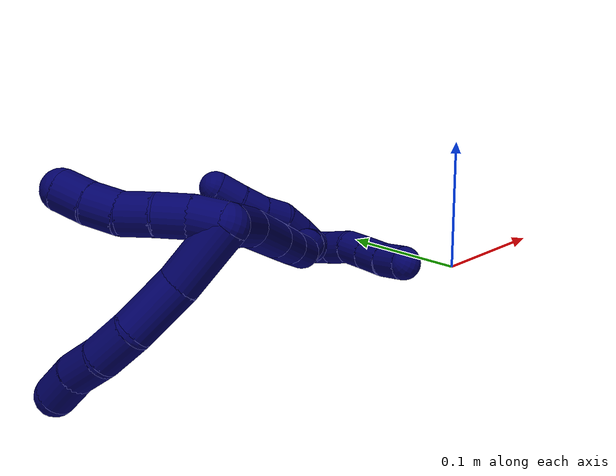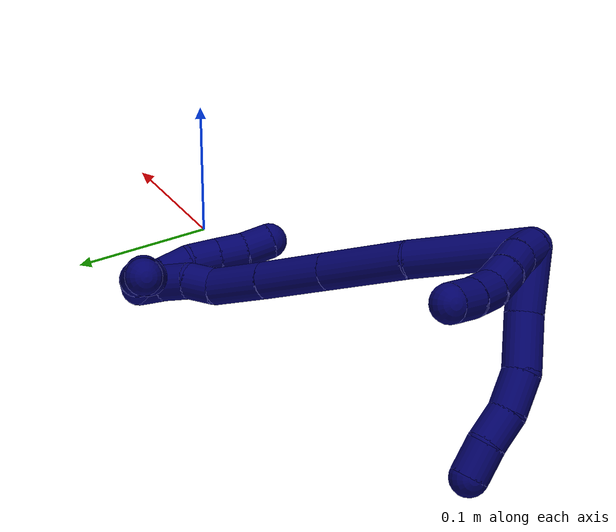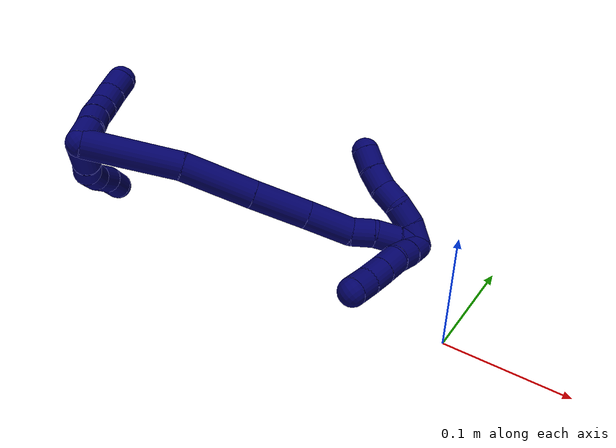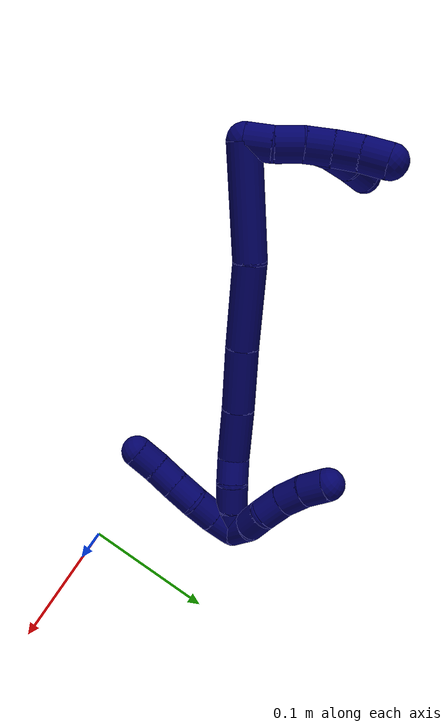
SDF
<sdf version="1.7">
 <world name="default">
  <model name="7">
   <static>0</static>
   <link name="7">
    <collision name="collision-cylinder-e_1_2_8">
     <pose>-0.018058 0.010568 0.002276 -1.35866 -1.03137 0.858573</pose>
     <geometry><cylinder><radius>0.0125</radius><length>0.042093</length></cylinder></geometry>
     <surface>
      <friction><ode><mu>1.16</mu><mu2>1.16</mu2><slip1>0</slip1><slip2>0</slip2></ode></friction>
      <contact><ode><kp>1e+06</kp><kd>1</kd><max_vel>0</max_vel><min_depth>0.001</min_depth></ode></contact>
     </surface>
    </collision>
    <visual name="visual-cylinder-e_1_2_8">
     <pose>-0.018058 0.010568 0.002276 -1.35866 -1.03137 0.858573</pose>
     <geometry><cylinder><radius>0.0125</radius><length>0.042093</length></cylinder></geometry>
     <material><ambient>0.003922 0 0.403922 1</ambient></material>
    </visual>
    <collision name="collision-cylinder-e_2_8_9">
     <pose>-0.051462 0.029594 0.008954 -1.09098 -1.01486 0.650882</pose>
     <geometry><cylinder><radius>0.0125</radius><length>0.036135</length></cylinder></geometry>
     <surface>
      <friction><ode><mu>1.16</mu><mu2>1.16</mu2><slip1>0</slip1><slip2>0</slip2></ode></friction>
      <contact><ode><kp>1e+06</kp><kd>1</kd><max_vel>0</max_vel><min_depth>0.001</min_depth></ode></contact>
     </surface>
    </collision>
    <visual name="visual-cylinder-e_2_8_9">
     <pose>-0.051462 0.029594 0.008954 -1.09098 -1.01486 0.650882</pose>
     <geometry><cylinder><radius>0.0125</radius><length>0.036135</length></cylinder></geometry>
     <material><ambient>0.003922 0 0.403922 1</ambient></material>
    </visual>
    <collision name="collision-cylinder-e_3_9_10">
     <pose>-0.076008 0.047136 0.014922 -1.39998 -0.784361 0.670444</pose>
     <geometry><cylinder><radius>0.0125</radius><length>0.026045</length></cylinder></geometry>
     <surface>
      <friction><ode><mu>1.16</mu><mu2>1.16</mu2><slip1>0</slip1><slip2>0</slip2></ode></friction>
      <contact><ode><kp>1e+06</kp><kd>1</kd><max_vel>0</max_vel><min_depth>0.001</min_depth></ode></contact>
     </surface>
    </collision>
    <visual name="visual-cylinder-e_3_9_10">
     <pose>-0.076008 0.047136 0.014922 -1.39998 -0.784361 0.670444</pose>
     <geometry><cylinder><radius>0.0125</radius><length>0.026045</length></cylinder></geometry>
     <material><ambient>0.003922 0 0.403922 1</ambient></material>
    </visual>
    <collision name="collision-cylinder-e_4_10_11">
     <pose>-0.091339 0.065885 0.017183 -1.4991 -0.564225 0.526999</pose>
     <geometry><cylinder><radius>0.0125</radius><length>0.022935</length></cylinder></geometry>
     <surface>
      <friction><ode><mu>1.16</mu><mu2>1.16</mu2><slip1>0</slip1><slip2>0</slip2></ode></friction>
      <contact><ode><kp>1e+06</kp><kd>1</kd><max_vel>0</max_vel><min_depth>0.001</min_depth></ode></contact>
     </surface>
    </collision>
    <visual name="visual-cylinder-e_4_10_11">
     <pose>-0.091339 0.065885 0.017183 -1.4991 -0.564225 0.526999</pose>
     <geometry><cylinder><radius>0.0125</radius><length>0.022935</length></cylinder></geometry>
     <material><ambient>0.003922 0 0.403922 1</ambient></material>
    </visual>
    <collision name="collision-cylinder-e_5_11_6">
     <pose>-0.104973 0.084108 0.017275 -1.64104 -0.718543 0.766047</pose>
     <geometry><cylinder><radius>0.0125</radius><length>0.022792</length></cylinder></geometry>
     <surface>
      <friction><ode><mu>1.16</mu><mu2>1.16</mu2><slip1>0</slip1><slip2>0</slip2></ode></friction>
      <contact><ode><kp>1e+06</kp><kd>1</kd><max_vel>0</max_vel><min_depth>0.001</min_depth></ode></contact>
     </surface>
    </collision>
    <visual name="visual-cylinder-e_5_11_6">
     <pose>-0.104973 0.084108 0.017275 -1.64104 -0.718543 0.766047</pose>
     <geometry><cylinder><radius>0.0125</radius><length>0.022792</length></cylinder></geometry>
     <material><ambient>0.003922 0 0.403922 1</ambient></material>
    </visual>
    <collision name="collision-cylinder-e_1_2_12">
     <pose>-0.000286 0.007974 0.006027 -0.923563 -0.028638 0.014253</pose>
     <geometry><cylinder><radius>0.0125</radius><length>0.02</length></cylinder></geometry>
     <surface>
      <friction><ode><mu>1.16</mu><mu2>1.16</mu2><slip1>0</slip1><slip2>0</slip2></ode></friction>
      <contact><ode><kp>1e+06</kp><kd>1</kd><max_vel>0</max_vel><min_depth>0.001</min_depth></ode></contact>
     </surface>
    </collision>
    <visual name="visual-cylinder-e_1_2_12">
     <pose>-0.000286 0.007974 0.006027 -0.923563 -0.028638 0.014253</pose>
     <geometry><cylinder><radius>0.0125</radius><length>0.02</length></cylinder></geometry>
     <material><ambient>0.003922 0 0.403922 1</ambient></material>
    </visual>
    <collision name="collision-cylinder-e_2_12_13">
     <pose>-0.002548 0.023184 0.018669 -0.830199 -0.198874 0.087879</pose>
     <geometry><cylinder><radius>0.0125</radius><length>0.02</length></cylinder></geometry>
     <surface>
      <friction><ode><mu>1.16</mu><mu2>1.16</mu2><slip1>0</slip1><slip2>0</slip2></ode></friction>
      <contact><ode><kp>1e+06</kp><kd>1</kd><max_vel>0</max_vel><min_depth>0.001</min_depth></ode></contact>
     </surface>
    </collision>
    <visual name="visual-cylinder-e_2_12_13">
     <pose>-0.002548 0.023184 0.018669 -0.830199 -0.198874 0.087879</pose>
     <geometry><cylinder><radius>0.0125</radius><length>0.02</length></cylinder></geometry>
     <material><ambient>0.003922 0 0.403922 1</ambient></material>
    </visual>
    <collision name="collision-cylinder-e_3_13_14">
     <pose>-0.006532 0.038433 0.030918 -0.957991 -0.202215 0.105279</pose>
     <geometry><cylinder><radius>0.0125</radius><length>0.02</length></cylinder></geometry>
     <surface>
      <friction><ode><mu>1.16</mu><mu2>1.16</mu2><slip1>0</slip1><slip2>0</slip2></ode></friction>
      <contact><ode><kp>1e+06</kp><kd>1</kd><max_vel>0</max_vel><min_depth>0.001</min_depth></ode></contact>
     </surface>
    </collision>
    <visual name="visual-cylinder-e_3_13_14">
     <pose>-0.006532 0.038433 0.030918 -0.957991 -0.202215 0.105279</pose>
     <geometry><cylinder><radius>0.0125</radius><length>0.02</length></cylinder></geometry>
     <material><ambient>0.003922 0 0.403922 1</ambient></material>
    </visual>
    <collision name="collision-cylinder-e_4_14_15">
     <pose>-0.007925 0.054555 0.042372 -0.948284 0.061596 -0.031617</pose>
     <geometry><cylinder><radius>0.0125</radius><length>0.02</length></cylinder></geometry>
     <surface>
      <friction><ode><mu>1.16</mu><mu2>1.16</mu2><slip1>0</slip1><slip2>0</slip2></ode></friction>
      <contact><ode><kp>1e+06</kp><kd>1</kd><max_vel>0</max_vel><min_depth>0.001</min_depth></ode></contact>
     </surface>
    </collision>
    <visual name="visual-cylinder-e_4_14_15">
     <pose>-0.007925 0.054555 0.042372 -0.948284 0.061596 -0.031617</pose>
     <geometry><cylinder><radius>0.0125</radius><length>0.02</length></cylinder></geometry>
     <material><ambient>0.003922 0 0.403922 1</ambient></material>
    </visual>
    <collision name="collision-cylinder-e_5_15_5">
     <pose>-0.00551 0.070941 0.053506 -1.00007 0.181 -0.099079</pose>
     <geometry><cylinder><radius>0.0125</radius><length>0.02</length></cylinder></geometry>
     <surface>
      <friction><ode><mu>1.16</mu><mu2>1.16</mu2><slip1>0</slip1><slip2>0</slip2></ode></friction>
      <contact><ode><kp>1e+06</kp><kd>1</kd><max_vel>0</max_vel><min_depth>0.001</min_depth></ode></contact>
     </surface>
    </collision>
    <visual name="visual-cylinder-e_5_15_5">
     <pose>-0.00551 0.070941 0.053506 -1.00007 0.181 -0.099079</pose>
     <geometry><cylinder><radius>0.0125</radius><length>0.02</length></cylinder></geometry>
     <material><ambient>0.003922 0 0.403922 1</ambient></material>
    </visual>
    <collision name="collision-cylinder-e_1_2_16">
     <pose>0.007186 0.030426 -0.02687 -2.29421 0.175205 -0.384659</pose>
     <geometry><cylinder><radius>0.0125</radius><length>0.082447</length></cylinder></geometry>
     <surface>
      <friction><ode><mu>1.16</mu><mu2>1.16</mu2><slip1>0</slip1><slip2>0</slip2></ode></friction>
      <contact><ode><kp>1e+06</kp><kd>1</kd><max_vel>0</max_vel><min_depth>0.001</min_depth></ode></contact>
     </surface>
    </collision>
    <visual name="visual-cylinder-e_1_2_16">
     <pose>0.007186 0.030426 -0.02687 -2.29421 0.175205 -0.384659</pose>
     <geometry><cylinder><radius>0.0125</radius><length>0.082447</length></cylinder></geometry>
     <material><ambient>0.003922 0 0.403922 1</ambient></material>
    </visual>
    <collision name="collision-cylinder-e_2_16_17">
     <pose>0.017717 0.081284 -0.078174 -2.44516 0.104663 -0.286605</pose>
     <geometry><cylinder><radius>0.0125</radius><length>0.064053</length></cylinder></geometry>
     <surface>
      <friction><ode><mu>1.16</mu><mu2>1.16</mu2><slip1>0</slip1><slip2>0</slip2></ode></friction>
      <contact><ode><kp>1e+06</kp><kd>1</kd><max_vel>0</max_vel><min_depth>0.001</min_depth></ode></contact>
     </surface>
    </collision>
    <visual name="visual-cylinder-e_2_16_17">
     <pose>0.017717 0.081284 -0.078174 -2.44516 0.104663 -0.286605</pose>
     <geometry><cylinder><radius>0.0125</radius><length>0.064053</length></cylinder></geometry>
     <material><ambient>0.003922 0 0.403922 1</ambient></material>
    </visual>
    <collision name="collision-cylinder-e_3_17_18">
     <pose>0.023769 0.118021 -0.12118 -2.42109 0.109046 -0.287772</pose>
     <geometry><cylinder><radius>0.0125</radius><length>0.049723</length></cylinder></geometry>
     <surface>
      <friction><ode><mu>1.16</mu><mu2>1.16</mu2><slip1>0</slip1><slip2>0</slip2></ode></friction>
      <contact><ode><kp>1e+06</kp><kd>1</kd><max_vel>0</max_vel><min_depth>0.001</min_depth></ode></contact>
     </surface>
    </collision>
    <visual name="visual-cylinder-e_3_17_18">
     <pose>0.023769 0.118021 -0.12118 -2.42109 0.109046 -0.287772</pose>
     <geometry><cylinder><radius>0.0125</radius><length>0.049723</length></cylinder></geometry>
     <material><ambient>0.003922 0 0.403922 1</ambient></material>
    </visual>
    <collision name="collision-cylinder-e_4_18_19">
     <pose>0.028953 0.147646 -0.155756 -2.44751 0.118462 -0.325023</pose>
     <geometry><cylinder><radius>0.0125</radius><length>0.041938</length></cylinder></geometry>
     <surface>
      <friction><ode><mu>1.16</mu><mu2>1.16</mu2><slip1>0</slip1><slip2>0</slip2></ode></friction>
      <contact><ode><kp>1e+06</kp><kd>1</kd><max_vel>0</max_vel><min_depth>0.001</min_depth></ode></contact>
     </surface>
    </collision>
    <visual name="visual-cylinder-e_4_18_19">
     <pose>0.028953 0.147646 -0.155756 -2.44751 0.118462 -0.325023</pose>
     <geometry><cylinder><radius>0.0125</radius><length>0.041938</length></cylinder></geometry>
     <material><ambient>0.003922 0 0.403922 1</ambient></material>
    </visual>
    <collision name="collision-cylinder-e_5_19_20">
     <pose>0.035865 0.16742 -0.178148 -2.35091 0.454244 -1.01151</pose>
     <geometry><cylinder><radius>0.0125</radius><length>0.02021</length></cylinder></geometry>
     <surface>
      <friction><ode><mu>1.16</mu><mu2>1.16</mu2><slip1>0</slip1><slip2>0</slip2></ode></friction>
      <contact><ode><kp>1e+06</kp><kd>1</kd><max_vel>0</max_vel><min_depth>0.001</min_depth></ode></contact>
     </surface>
    </collision>
    <visual name="visual-cylinder-e_5_19_20">
     <pose>0.035865 0.16742 -0.178148 -2.35091 0.454244 -1.01151</pose>
     <geometry><cylinder><radius>0.0125</radius><length>0.02021</length></cylinder></geometry>
     <material><ambient>0.003922 0 0.403922 1</ambient></material>
    </visual>
    <collision name="collision-cylinder-e_6_20_21">
     <pose>0.042181 0.181259 -0.192142 -2.37105 0.175695 -0.427717</pose>
     <geometry><cylinder><radius>0.0125</radius><length>0.021536</length></cylinder></geometry>
     <surface>
      <friction><ode><mu>1.16</mu><mu2>1.16</mu2><slip1>0</slip1><slip2>0</slip2></ode></friction>
      <contact><ode><kp>1e+06</kp><kd>1</kd><max_vel>0</max_vel><min_depth>0.001</min_depth></ode></contact>
     </surface>
    </collision>
    <visual name="visual-cylinder-e_6_20_21">
     <pose>0.042181 0.181259 -0.192142 -2.37105 0.175695 -0.427717</pose>
     <geometry><cylinder><radius>0.0125</radius><length>0.021536</length></cylinder></geometry>
     <material><ambient>0.003922 0 0.403922 1</ambient></material>
    </visual>
    <collision name="collision-cylinder-e_7_21_1">
     <pose>0.045119 0.196017 -0.206492 -2.31159 0.10527 -0.238019</pose>
     <geometry><cylinder><radius>0.0125</radius><length>0.020094</length></cylinder></geometry>
     <surface>
      <friction><ode><mu>1.16</mu><mu2>1.16</mu2><slip1>0</slip1><slip2>0</slip2></ode></friction>
      <contact><ode><kp>1e+06</kp><kd>1</kd><max_vel>0</max_vel><min_depth>0.001</min_depth></ode></contact>
     </surface>
    </collision>
    <visual name="visual-cylinder-e_7_21_1">
     <pose>0.045119 0.196017 -0.206492 -2.31159 0.10527 -0.238019</pose>
     <geometry><cylinder><radius>0.0125</radius><length>0.020094</length></cylinder></geometry>
     <material><ambient>0.003922 0 0.403922 1</ambient></material>
    </visual>
    <collision name="collision-cylinder-e_1_1_22">
     <pose>0.049753 0.204431 -0.203956 -0.111741 0.366037 -0.020703</pose>
     <geometry><cylinder><radius>0.0125</radius><length>0.02</length></cylinder></geometry>
     <surface>
      <friction><ode><mu>1.16</mu><mu2>1.16</mu2><slip1>0</slip1><slip2>0</slip2></ode></friction>
      <contact><ode><kp>1e+06</kp><kd>1</kd><max_vel>0</max_vel><min_depth>0.001</min_depth></ode></contact>
     </surface>
    </collision>
    <visual name="visual-cylinder-e_1_1_22">
     <pose>0.049753 0.204431 -0.203956 -0.111741 0.366037 -0.020703</pose>
     <geometry><cylinder><radius>0.0125</radius><length>0.02</length></cylinder></geometry>
     <material><ambient>0.003922 0 0.403922 1</ambient></material>
    </visual>
    <collision name="collision-cylinder-e_2_22_23">
     <pose>0.055324 0.204324 -0.184944 0.117409 0.200459 0.011821</pose>
     <geometry><cylinder><radius>0.0125</radius><length>0.02</length></cylinder></geometry>
     <surface>
      <friction><ode><mu>1.16</mu><mu2>1.16</mu2><slip1>0</slip1><slip2>0</slip2></ode></friction>
      <contact><ode><kp>1e+06</kp><kd>1</kd><max_vel>0</max_vel><min_depth>0.001</min_depth></ode></contact>
     </surface>
    </collision>
    <visual name="visual-cylinder-e_2_22_23">
     <pose>0.055324 0.204324 -0.184944 0.117409 0.200459 0.011821</pose>
     <geometry><cylinder><radius>0.0125</radius><length>0.02</length></cylinder></geometry>
     <material><ambient>0.003922 0 0.403922 1</ambient></material>
    </visual>
    <collision name="collision-cylinder-e_3_23_24">
     <pose>0.05636 0.203783 -0.165276 -0.060952 -0.095648 0.002918</pose>
     <geometry><cylinder><radius>0.0125</radius><length>0.02</length></cylinder></geometry>
     <surface>
      <friction><ode><mu>1.16</mu><mu2>1.16</mu2><slip1>0</slip1><slip2>0</slip2></ode></friction>
      <contact><ode><kp>1e+06</kp><kd>1</kd><max_vel>0</max_vel><min_depth>0.001</min_depth></ode></contact>
     </surface>
    </collision>
    <visual name="visual-cylinder-e_3_23_24">
     <pose>0.05636 0.203783 -0.165276 -0.060952 -0.095648 0.002918</pose>
     <geometry><cylinder><radius>0.0125</radius><length>0.02</length></cylinder></geometry>
     <material><ambient>0.003922 0 0.403922 1</ambient></material>
    </visual>
    <collision name="collision-cylinder-e_4_24_25">
     <pose>0.056288 0.205876 -0.145491 -0.14985 0.088434 -0.006643</pose>
     <geometry><cylinder><radius>0.0125</radius><length>0.02</length></cylinder></geometry>
     <surface>
      <friction><ode><mu>1.16</mu><mu2>1.16</mu2><slip1>0</slip1><slip2>0</slip2></ode></friction>
      <contact><ode><kp>1e+06</kp><kd>1</kd><max_vel>0</max_vel><min_depth>0.001</min_depth></ode></contact>
     </surface>
    </collision>
    <visual name="visual-cylinder-e_4_24_25">
     <pose>0.056288 0.205876 -0.145491 -0.14985 0.088434 -0.006643</pose>
     <geometry><cylinder><radius>0.0125</radius><length>0.02</length></cylinder></geometry>
     <material><ambient>0.003922 0 0.403922 1</ambient></material>
    </visual>
    <collision name="collision-cylinder-e_5_25_4">
     <pose>0.058715 0.210162 -0.126166 -0.287248 0.154998 -0.02246</pose>
     <geometry><cylinder><radius>0.0125</radius><length>0.02</length></cylinder></geometry>
     <surface>
      <friction><ode><mu>1.16</mu><mu2>1.16</mu2><slip1>0</slip1><slip2>0</slip2></ode></friction>
      <contact><ode><kp>1e+06</kp><kd>1</kd><max_vel>0</max_vel><min_depth>0.001</min_depth></ode></contact>
     </surface>
    </collision>
    <visual name="visual-cylinder-e_5_25_4">
     <pose>0.058715 0.210162 -0.126166 -0.287248 0.154998 -0.02246</pose>
     <geometry><cylinder><radius>0.0125</radius><length>0.02</length></cylinder></geometry>
     <material><ambient>0.003922 0 0.403922 1</ambient></material>
    </visual>
    <collision name="collision-cylinder-e_1_1_26">
     <pose>0.046969 0.193479 -0.214308 1.67864 0.079599 0.088671</pose>
     <geometry><cylinder><radius>0.0125</radius><length>0.02</length></cylinder></geometry>
     <surface>
      <friction><ode><mu>1.16</mu><mu2>1.16</mu2><slip1>0</slip1><slip2>0</slip2></ode></friction>
      <contact><ode><kp>1e+06</kp><kd>1</kd><max_vel>0</max_vel><min_depth>0.001</min_depth></ode></contact>
     </surface>
    </collision>
    <visual name="visual-cylinder-e_1_1_26">
     <pose>0.046969 0.193479 -0.214308 1.67864 0.079599 0.088671</pose>
     <geometry><cylinder><radius>0.0125</radius><length>0.02</length></cylinder></geometry>
     <material><ambient>0.003922 0 0.403922 1</ambient></material>
    </visual>
    <collision name="collision-cylinder-e_2_26_27">
     <pose>0.048556 0.1736 -0.215375 1.57021 0.079193 0.079147</pose>
     <geometry><cylinder><radius>0.0125</radius><length>0.02</length></cylinder></geometry>
     <surface>
      <friction><ode><mu>1.16</mu><mu2>1.16</mu2><slip1>0</slip1><slip2>0</slip2></ode></friction>
      <contact><ode><kp>1e+06</kp><kd>1</kd><max_vel>0</max_vel><min_depth>0.001</min_depth></ode></contact>
     </surface>
    </collision>
    <visual name="visual-cylinder-e_2_26_27">
     <pose>0.048556 0.1736 -0.215375 1.57021 0.079193 0.079147</pose>
     <geometry><cylinder><radius>0.0125</radius><length>0.02</length></cylinder></geometry>
     <material><ambient>0.003922 0 0.403922 1</ambient></material>
    </visual>
    <collision name="collision-cylinder-e_3_27_28">
     <pose>0.04779 0.153818 -0.216495 1.68498 -0.1563 -0.175158</pose>
     <geometry><cylinder><radius>0.0125</radius><length>0.02</length></cylinder></geometry>
     <surface>
      <friction><ode><mu>1.16</mu><mu2>1.16</mu2><slip1>0</slip1><slip2>0</slip2></ode></friction>
      <contact><ode><kp>1e+06</kp><kd>1</kd><max_vel>0</max_vel><min_depth>0.001</min_depth></ode></contact>
     </surface>
    </collision>
    <visual name="visual-cylinder-e_3_27_28">
     <pose>0.04779 0.153818 -0.216495 1.68498 -0.1563 -0.175158</pose>
     <geometry><cylinder><radius>0.0125</radius><length>0.02</length></cylinder></geometry>
     <material><ambient>0.003922 0 0.403922 1</ambient></material>
    </visual>
    <collision name="collision-cylinder-e_4_28_29">
     <pose>0.044544 0.134186 -0.218483 1.6585 -0.169799 -0.1853</pose>
     <geometry><cylinder><radius>0.0125</radius><length>0.02</length></cylinder></geometry>
     <surface>
      <friction><ode><mu>1.16</mu><mu2>1.16</mu2><slip1>0</slip1><slip2>0</slip2></ode></friction>
      <contact><ode><kp>1e+06</kp><kd>1</kd><max_vel>0</max_vel><min_depth>0.001</min_depth></ode></contact>
     </surface>
    </collision>
    <visual name="visual-cylinder-e_4_28_29">
     <pose>0.044544 0.134186 -0.218483 1.6585 -0.169799 -0.1853</pose>
     <geometry><cylinder><radius>0.0125</radius><length>0.02</length></cylinder></geometry>
     <material><ambient>0.003922 0 0.403922 1</ambient></material>
    </visual>
    <collision name="collision-cylinder-e_5_29_3">
     <pose>0.042543 0.114394 -0.220004 1.63662 -0.031059 -0.033173</pose>
     <geometry><cylinder><radius>0.0125</radius><length>0.02</length></cylinder></geometry>
     <surface>
      <friction><ode><mu>1.16</mu><mu2>1.16</mu2><slip1>0</slip1><slip2>0</slip2></ode></friction>
      <contact><ode><kp>1e+06</kp><kd>1</kd><max_vel>0</max_vel><min_depth>0.001</min_depth></ode></contact>
     </surface>
    </collision>
    <visual name="visual-cylinder-e_5_29_3">
     <pose>0.042543 0.114394 -0.220004 1.63662 -0.031059 -0.033173</pose>
     <geometry><cylinder><radius>0.0125</radius><length>0.02</length></cylinder></geometry>
     <material><ambient>0.003922 0 0.403922 1</ambient></material>
    </visual>
    <collision name="collision-sphere-3">
     <pose>0.042233 0.10442 -0.220662 0 -0 0</pose>
     <geometry><sphere><radius>0.0125</radius></sphere></geometry>
     <surface>
      <friction><ode><mu>1.16</mu><mu2>1.16</mu2><slip1>0</slip1><slip2>0</slip2></ode></friction>
      <contact><ode><kp>1e+06</kp><kd>1</kd><max_vel>0</max_vel><min_depth>0.001</min_depth></ode></contact>
     </surface>
    </collision>
    <visual name="visual-sphere-3">
     <pose>0.042233 0.10442 -0.220662 0 -0 0</pose>
     <geometry><sphere><radius>0.0125</radius></sphere></geometry>
     <material><ambient>0.003922 0 0.403922 1</ambient></material>
    </visual>
    <collision name="collision-sphere-29">
     <pose>0.042854 0.124367 -0.219347 0 -0 0</pose>
     <geometry><sphere><radius>0.0125</radius></sphere></geometry>
     <surface>
      <friction><ode><mu>1.16</mu><mu2>1.16</mu2><slip1>0</slip1><slip2>0</slip2></ode></friction>
      <contact><ode><kp>1e+06</kp><kd>1</kd><max_vel>0</max_vel><min_depth>0.001</min_depth></ode></contact>
     </surface>
    </collision>
    <visual name="visual-sphere-29">
     <pose>0.042854 0.124367 -0.219347 0 -0 0</pose>
     <geometry><sphere><radius>0.0125</radius></sphere></geometry>
     <material><ambient>0.003922 0 0.403922 1</ambient></material>
    </visual>
    <collision name="collision-sphere-28">
     <pose>0.046233 0.144004 -0.21762 0 -0 0</pose>
     <geometry><sphere><radius>0.0125</radius></sphere></geometry>
     <surface>
      <friction><ode><mu>1.16</mu><mu2>1.16</mu2><slip1>0</slip1><slip2>0</slip2></ode></friction>
      <contact><ode><kp>1e+06</kp><kd>1</kd><max_vel>0</max_vel><min_depth>0.001</min_depth></ode></contact>
     </surface>
    </collision>
    <visual name="visual-sphere-28">
     <pose>0.046233 0.144004 -0.21762 0 -0 0</pose>
     <geometry><sphere><radius>0.0125</radius></sphere></geometry>
     <material><ambient>0.003922 0 0.403922 1</ambient></material>
    </visual>
    <collision name="collision-sphere-27">
     <pose>0.049347 0.163631 -0.215369 0 -0 0</pose>
     <geometry><sphere><radius>0.0125</radius></sphere></geometry>
     <surface>
      <friction><ode><mu>1.16</mu><mu2>1.16</mu2><slip1>0</slip1><slip2>0</slip2></ode></friction>
      <contact><ode><kp>1e+06</kp><kd>1</kd><max_vel>0</max_vel><min_depth>0.001</min_depth></ode></contact>
     </surface>
    </collision>
    <visual name="visual-sphere-27">
     <pose>0.049347 0.163631 -0.215369 0 -0 0</pose>
     <geometry><sphere><radius>0.0125</radius></sphere></geometry>
     <material><ambient>0.003922 0 0.403922 1</ambient></material>
    </visual>
    <collision name="collision-sphere-26">
     <pose>0.047765 0.183569 -0.215381 0 -0 0</pose>
     <geometry><sphere><radius>0.0125</radius></sphere></geometry>
     <surface>
      <friction><ode><mu>1.16</mu><mu2>1.16</mu2><slip1>0</slip1><slip2>0</slip2></ode></friction>
      <contact><ode><kp>1e+06</kp><kd>1</kd><max_vel>0</max_vel><min_depth>0.001</min_depth></ode></contact>
     </surface>
    </collision>
    <visual name="visual-sphere-26">
     <pose>0.047765 0.183569 -0.215381 0 -0 0</pose>
     <geometry><sphere><radius>0.0125</radius></sphere></geometry>
     <material><ambient>0.003922 0 0.403922 1</ambient></material>
    </visual>
    <collision name="collision-sphere-4">
     <pose>0.060259 0.212961 -0.116691 0 -0 0</pose>
     <geometry><sphere><radius>0.0125</radius></sphere></geometry>
     <surface>
      <friction><ode><mu>1.16</mu><mu2>1.16</mu2><slip1>0</slip1><slip2>0</slip2></ode></friction>
      <contact><ode><kp>1e+06</kp><kd>1</kd><max_vel>0</max_vel><min_depth>0.001</min_depth></ode></contact>
     </surface>
    </collision>
    <visual name="visual-sphere-4">
     <pose>0.060259 0.212961 -0.116691 0 -0 0</pose>
     <geometry><sphere><radius>0.0125</radius></sphere></geometry>
     <material><ambient>0.003922 0 0.403922 1</ambient></material>
    </visual>
    <collision name="collision-sphere-25">
     <pose>0.057171 0.207363 -0.135642 0 -0 0</pose>
     <geometry><sphere><radius>0.0125</radius></sphere></geometry>
     <surface>
      <friction><ode><mu>1.16</mu><mu2>1.16</mu2><slip1>0</slip1><slip2>0</slip2></ode></friction>
      <contact><ode><kp>1e+06</kp><kd>1</kd><max_vel>0</max_vel><min_depth>0.001</min_depth></ode></contact>
     </surface>
    </collision>
    <visual name="visual-sphere-25">
     <pose>0.057171 0.207363 -0.135642 0 -0 0</pose>
     <geometry><sphere><radius>0.0125</radius></sphere></geometry>
     <material><ambient>0.003922 0 0.403922 1</ambient></material>
    </visual>
    <collision name="collision-sphere-24">
     <pose>0.055405 0.204389 -0.15534 0 -0 0</pose>
     <geometry><sphere><radius>0.0125</radius></sphere></geometry>
     <surface>
      <friction><ode><mu>1.16</mu><mu2>1.16</mu2><slip1>0</slip1><slip2>0</slip2></ode></friction>
      <contact><ode><kp>1e+06</kp><kd>1</kd><max_vel>0</max_vel><min_depth>0.001</min_depth></ode></contact>
     </surface>
    </collision>
    <visual name="visual-sphere-24">
     <pose>0.055405 0.204389 -0.15534 0 -0 0</pose>
     <geometry><sphere><radius>0.0125</radius></sphere></geometry>
     <material><ambient>0.003922 0 0.403922 1</ambient></material>
    </visual>
    <collision name="collision-sphere-23">
     <pose>0.057315 0.203176 -0.175212 0 -0 0</pose>
     <geometry><sphere><radius>0.0125</radius></sphere></geometry>
     <surface>
      <friction><ode><mu>1.16</mu><mu2>1.16</mu2><slip1>0</slip1><slip2>0</slip2></ode></friction>
      <contact><ode><kp>1e+06</kp><kd>1</kd><max_vel>0</max_vel><min_depth>0.001</min_depth></ode></contact>
     </surface>
    </collision>
    <visual name="visual-sphere-23">
     <pose>0.057315 0.203176 -0.175212 0 -0 0</pose>
     <geometry><sphere><radius>0.0125</radius></sphere></geometry>
     <material><ambient>0.003922 0 0.403922 1</ambient></material>
    </visual>
    <collision name="collision-sphere-22">
     <pose>0.053333 0.205472 -0.194676 0 -0 0</pose>
     <geometry><sphere><radius>0.0125</radius></sphere></geometry>
     <surface>
      <friction><ode><mu>1.16</mu><mu2>1.16</mu2><slip1>0</slip1><slip2>0</slip2></ode></friction>
      <contact><ode><kp>1e+06</kp><kd>1</kd><max_vel>0</max_vel><min_depth>0.001</min_depth></ode></contact>
     </surface>
    </collision>
    <visual name="visual-sphere-22">
     <pose>0.053333 0.205472 -0.194676 0 -0 0</pose>
     <geometry><sphere><radius>0.0125</radius></sphere></geometry>
     <material><ambient>0.003922 0 0.403922 1</ambient></material>
    </visual>
    <collision name="collision-sphere-1">
     <pose>0.046174 0.20339 -0.213235 0 -0 0</pose>
     <geometry><sphere><radius>0.0125</radius></sphere></geometry>
     <surface>
      <friction><ode><mu>1.16</mu><mu2>1.16</mu2><slip1>0</slip1><slip2>0</slip2></ode></friction>
      <contact><ode><kp>1e+06</kp><kd>1</kd><max_vel>0</max_vel><min_depth>0.001</min_depth></ode></contact>
     </surface>
    </collision>
    <visual name="visual-sphere-1">
     <pose>0.046174 0.20339 -0.213235 0 -0 0</pose>
     <geometry><sphere><radius>0.0125</radius></sphere></geometry>
     <material><ambient>0.003922 0 0.403922 1</ambient></material>
    </visual>
    <collision name="collision-sphere-21">
     <pose>0.044063 0.188644 -0.199749 0 -0 0</pose>
     <geometry><sphere><radius>0.0125</radius></sphere></geometry>
     <surface>
      <friction><ode><mu>1.16</mu><mu2>1.16</mu2><slip1>0</slip1><slip2>0</slip2></ode></friction>
      <contact><ode><kp>1e+06</kp><kd>1</kd><max_vel>0</max_vel><min_depth>0.001</min_depth></ode></contact>
     </surface>
    </collision>
    <visual name="visual-sphere-21">
     <pose>0.044063 0.188644 -0.199749 0 -0 0</pose>
     <geometry><sphere><radius>0.0125</radius></sphere></geometry>
     <material><ambient>0.003922 0 0.403922 1</ambient></material>
    </visual>
    <collision name="collision-sphere-6">
     <pose>-0.112475 0.092665 0.016673 0 -0 0</pose>
     <geometry><sphere><radius>0.0125</radius></sphere></geometry>
     <surface>
      <friction><ode><mu>1.16</mu><mu2>1.16</mu2><slip1>0</slip1><slip2>0</slip2></ode></friction>
      <contact><ode><kp>1e+06</kp><kd>1</kd><max_vel>0</max_vel><min_depth>0.001</min_depth></ode></contact>
     </surface>
    </collision>
    <visual name="visual-sphere-6">
     <pose>-0.112475 0.092665 0.016673 0 -0 0</pose>
     <geometry><sphere><radius>0.0125</radius></sphere></geometry>
     <material><ambient>0.003922 0 0.403922 1</ambient></material>
    </visual>
    <collision name="collision-sphere-11">
     <pose>-0.097471 0.07555 0.017877 0 -0 0</pose>
     <geometry><sphere><radius>0.0125</radius></sphere></geometry>
     <surface>
      <friction><ode><mu>1.16</mu><mu2>1.16</mu2><slip1>0</slip1><slip2>0</slip2></ode></friction>
      <contact><ode><kp>1e+06</kp><kd>1</kd><max_vel>0</max_vel><min_depth>0.001</min_depth></ode></contact>
     </surface>
    </collision>
    <visual name="visual-sphere-11">
     <pose>-0.097471 0.07555 0.017877 0 -0 0</pose>
     <geometry><sphere><radius>0.0125</radius></sphere></geometry>
     <material><ambient>0.003922 0 0.403922 1</ambient></material>
    </visual>
    <collision name="collision-sphere-10">
     <pose>-0.085206 0.05622 0.016489 0 -0 0</pose>
     <geometry><sphere><radius>0.0125</radius></sphere></geometry>
     <surface>
      <friction><ode><mu>1.16</mu><mu2>1.16</mu2><slip1>0</slip1><slip2>0</slip2></ode></friction>
      <contact><ode><kp>1e+06</kp><kd>1</kd><max_vel>0</max_vel><min_depth>0.001</min_depth></ode></contact>
     </surface>
    </collision>
    <visual name="visual-sphere-10">
     <pose>-0.085206 0.05622 0.016489 0 -0 0</pose>
     <geometry><sphere><radius>0.0125</radius></sphere></geometry>
     <material><ambient>0.003922 0 0.403922 1</ambient></material>
    </visual>
    <collision name="collision-sphere-9">
     <pose>-0.066809 0.038053 0.013355 0 -0 0</pose>
     <geometry><sphere><radius>0.0125</radius></sphere></geometry>
     <surface>
      <friction><ode><mu>1.16</mu><mu2>1.16</mu2><slip1>0</slip1><slip2>0</slip2></ode></friction>
      <contact><ode><kp>1e+06</kp><kd>1</kd><max_vel>0</max_vel><min_depth>0.001</min_depth></ode></contact>
     </surface>
    </collision>
    <visual name="visual-sphere-9">
     <pose>-0.066809 0.038053 0.013355 0 -0 0</pose>
     <geometry><sphere><radius>0.0125</radius></sphere></geometry>
     <material><ambient>0.003922 0 0.403922 1</ambient></material>
    </visual>
    <collision name="collision-sphere-2">
     <geometry><sphere><radius>0.0125</radius></sphere></geometry>
     <surface>
      <friction><ode><mu>1.16</mu><mu2>1.16</mu2><slip1>0</slip1><slip2>0</slip2></ode></friction>
      <contact><ode><kp>1e+06</kp><kd>1</kd><max_vel>0</max_vel><min_depth>0.001</min_depth></ode></contact>
     </surface>
    </collision>
    <visual name="visual-sphere-2">
     <geometry><sphere><radius>0.0125</radius></sphere></geometry>
     <material><ambient>0.003922 0 0.403922 1</ambient></material>
    </visual>
    <collision name="collision-sphere-19">
     <pose>0.031431 0.160965 -0.171761 0 -0 0</pose>
     <geometry><sphere><radius>0.0125</radius></sphere></geometry>
     <surface>
      <friction><ode><mu>1.16</mu><mu2>1.16</mu2><slip1>0</slip1><slip2>0</slip2></ode></friction>
      <contact><ode><kp>1e+06</kp><kd>1</kd><max_vel>0</max_vel><min_depth>0.001</min_depth></ode></contact>
     </surface>
    </collision>
    <visual name="visual-sphere-19">
     <pose>0.031431 0.160965 -0.171761 0 -0 0</pose>
     <geometry><sphere><radius>0.0125</radius></sphere></geometry>
     <material><ambient>0.003922 0 0.403922 1</ambient></material>
    </visual>
    <collision name="collision-sphere-8">
     <pose>-0.036116 0.021136 0.004552 0 -0 0</pose>
     <geometry><sphere><radius>0.0125</radius></sphere></geometry>
     <surface>
      <friction><ode><mu>1.16</mu><mu2>1.16</mu2><slip1>0</slip1><slip2>0</slip2></ode></friction>
      <contact><ode><kp>1e+06</kp><kd>1</kd><max_vel>0</max_vel><min_depth>0.001</min_depth></ode></contact>
     </surface>
    </collision>
    <visual name="visual-sphere-8">
     <pose>-0.036116 0.021136 0.004552 0 -0 0</pose>
     <geometry><sphere><radius>0.0125</radius></sphere></geometry>
     <material><ambient>0.003922 0 0.403922 1</ambient></material>
    </visual>
    <collision name="collision-sphere-12">
     <pose>-0.000573 0.015949 0.012055 0 -0 0</pose>
     <geometry><sphere><radius>0.0125</radius></sphere></geometry>
     <surface>
      <friction><ode><mu>1.16</mu><mu2>1.16</mu2><slip1>0</slip1><slip2>0</slip2></ode></friction>
      <contact><ode><kp>1e+06</kp><kd>1</kd><max_vel>0</max_vel><min_depth>0.001</min_depth></ode></contact>
     </surface>
    </collision>
    <visual name="visual-sphere-12">
     <pose>-0.000573 0.015949 0.012055 0 -0 0</pose>
     <geometry><sphere><radius>0.0125</radius></sphere></geometry>
     <material><ambient>0.003922 0 0.403922 1</ambient></material>
    </visual>
    <collision name="collision-sphere-13">
     <pose>-0.004524 0.030419 0.025283 0 -0 0</pose>
     <geometry><sphere><radius>0.0125</radius></sphere></geometry>
     <surface>
      <friction><ode><mu>1.16</mu><mu2>1.16</mu2><slip1>0</slip1><slip2>0</slip2></ode></friction>
      <contact><ode><kp>1e+06</kp><kd>1</kd><max_vel>0</max_vel><min_depth>0.001</min_depth></ode></contact>
     </surface>
    </collision>
    <visual name="visual-sphere-13">
     <pose>-0.004524 0.030419 0.025283 0 -0 0</pose>
     <geometry><sphere><radius>0.0125</radius></sphere></geometry>
     <material><ambient>0.003922 0 0.403922 1</ambient></material>
    </visual>
    <collision name="collision-sphere-14">
     <pose>-0.008541 0.046446 0.036552 0 -0 0</pose>
     <geometry><sphere><radius>0.0125</radius></sphere></geometry>
     <surface>
      <friction><ode><mu>1.16</mu><mu2>1.16</mu2><slip1>0</slip1><slip2>0</slip2></ode></friction>
      <contact><ode><kp>1e+06</kp><kd>1</kd><max_vel>0</max_vel><min_depth>0.001</min_depth></ode></contact>
     </surface>
    </collision>
    <visual name="visual-sphere-14">
     <pose>-0.008541 0.046446 0.036552 0 -0 0</pose>
     <geometry><sphere><radius>0.0125</radius></sphere></geometry>
     <material><ambient>0.003922 0 0.403922 1</ambient></material>
    </visual>
    <collision name="collision-sphere-15">
     <pose>-0.00731 0.062664 0.048192 0 -0 0</pose>
     <geometry><sphere><radius>0.0125</radius></sphere></geometry>
     <surface>
      <friction><ode><mu>1.16</mu><mu2>1.16</mu2><slip1>0</slip1><slip2>0</slip2></ode></friction>
      <contact><ode><kp>1e+06</kp><kd>1</kd><max_vel>0</max_vel><min_depth>0.001</min_depth></ode></contact>
     </surface>
    </collision>
    <visual name="visual-sphere-15">
     <pose>-0.00731 0.062664 0.048192 0 -0 0</pose>
     <geometry><sphere><radius>0.0125</radius></sphere></geometry>
     <material><ambient>0.003922 0 0.403922 1</ambient></material>
    </visual>
    <collision name="collision-sphere-5">
     <pose>-0.003709 0.079219 0.05882 0 -0 0</pose>
     <geometry><sphere><radius>0.0125</radius></sphere></geometry>
     <surface>
      <friction><ode><mu>1.16</mu><mu2>1.16</mu2><slip1>0</slip1><slip2>0</slip2></ode></friction>
      <contact><ode><kp>1e+06</kp><kd>1</kd><max_vel>0</max_vel><min_depth>0.001</min_depth></ode></contact>
     </surface>
    </collision>
    <visual name="visual-sphere-5">
     <pose>-0.003709 0.079219 0.05882 0 -0 0</pose>
     <geometry><sphere><radius>0.0125</radius></sphere></geometry>
     <material><ambient>0.003922 0 0.403922 1</ambient></material>
    </visual>
    <collision name="collision-sphere-16">
     <pose>0.014371 0.060852 -0.05374 0 -0 0</pose>
     <geometry><sphere><radius>0.0125</radius></sphere></geometry>
     <surface>
      <friction><ode><mu>1.16</mu><mu2>1.16</mu2><slip1>0</slip1><slip2>0</slip2></ode></friction>
      <contact><ode><kp>1e+06</kp><kd>1</kd><max_vel>0</max_vel><min_depth>0.001</min_depth></ode></contact>
     </surface>
    </collision>
    <visual name="visual-sphere-16">
     <pose>0.014371 0.060852 -0.05374 0 -0 0</pose>
     <geometry><sphere><radius>0.0125</radius></sphere></geometry>
     <material><ambient>0.003922 0 0.403922 1</ambient></material>
    </visual>
    <collision name="collision-sphere-17">
     <pose>0.021063 0.101716 -0.102608 0 -0 0</pose>
     <geometry><sphere><radius>0.0125</radius></sphere></geometry>
     <surface>
      <friction><ode><mu>1.16</mu><mu2>1.16</mu2><slip1>0</slip1><slip2>0</slip2></ode></friction>
      <contact><ode><kp>1e+06</kp><kd>1</kd><max_vel>0</max_vel><min_depth>0.001</min_depth></ode></contact>
     </surface>
    </collision>
    <visual name="visual-sphere-17">
     <pose>0.021063 0.101716 -0.102608 0 -0 0</pose>
     <geometry><sphere><radius>0.0125</radius></sphere></geometry>
     <material><ambient>0.003922 0 0.403922 1</ambient></material>
    </visual>
    <collision name="collision-sphere-18">
     <pose>0.026474 0.134326 -0.139752 0 -0 0</pose>
     <geometry><sphere><radius>0.0125</radius></sphere></geometry>
     <surface>
      <friction><ode><mu>1.16</mu><mu2>1.16</mu2><slip1>0</slip1><slip2>0</slip2></ode></friction>
      <contact><ode><kp>1e+06</kp><kd>1</kd><max_vel>0</max_vel><min_depth>0.001</min_depth></ode></contact>
     </surface>
    </collision>
    <visual name="visual-sphere-18">
     <pose>0.026474 0.134326 -0.139752 0 -0 0</pose>
     <geometry><sphere><radius>0.0125</radius></sphere></geometry>
     <material><ambient>0.003922 0 0.403922 1</ambient></material>
    </visual>
    <collision name="collision-sphere-20">
     <pose>0.040299 0.173874 -0.184534 0 -0 0</pose>
     <geometry><sphere><radius>0.0125</radius></sphere></geometry>
     <surface>
      <friction><ode><mu>1.16</mu><mu2>1.16</mu2><slip1>0</slip1><slip2>0</slip2></ode></friction>
      <contact><ode><kp>1e+06</kp><kd>1</kd><max_vel>0</max_vel><min_depth>0.001</min_depth></ode></contact>
     </surface>
    </collision>
    <visual name="visual-sphere-20">
     <pose>0.040299 0.173874 -0.184534 0 -0 0</pose>
     <geometry><sphere><radius>0.0125</radius></sphere></geometry>
     <material><ambient>0.003922 0 0.403922 1</ambient></material>
    </visual>
    <inertial>
     <pose>0.009676 0.102712 -0.087003 0 -0 0</pose>
     <mass>0.75</mass>
     <inertia>
      <ixx>9.1e-05</ixx>
      <ixy>0</ixy>
      <ixz>0</ixz>
      <iyy>-4.1e-05</iyy>
      <iyz>0</iyz>
      <izz>-8.3e-05</izz>
     </inertia>
    </inertial>
   </link>
   <pose>-0.297468 -0.07206 0.117596 -0.37352 -1.01628 0.189257</pose>
  </model>
 </world>
</sdf>
